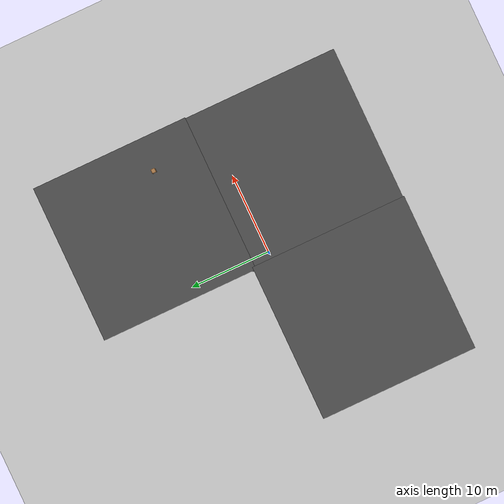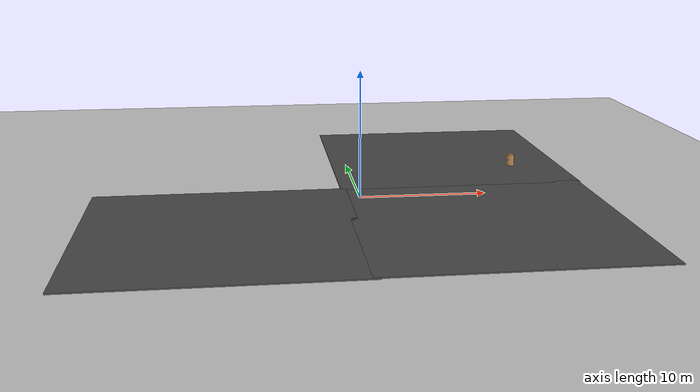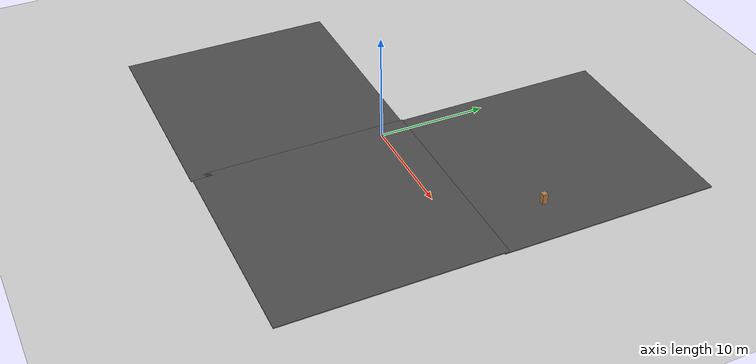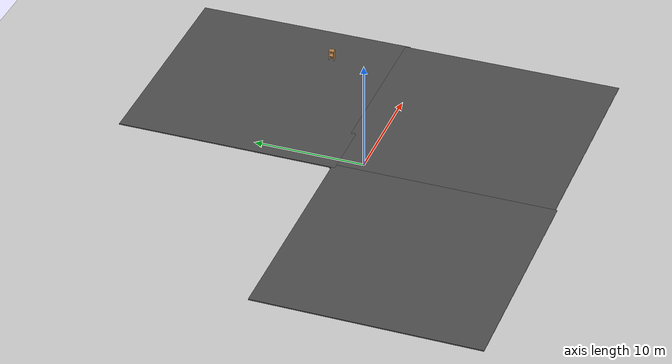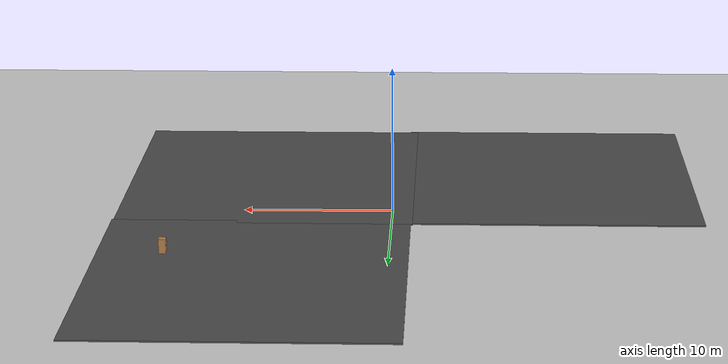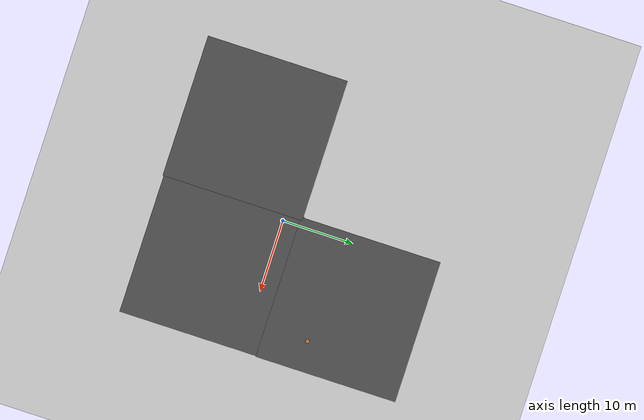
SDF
<sdf version="1.7">
 <world name="default">
  <model name="ground_plane">
   <static>1</static>
   <link name="link">
    <collision name="collision">
     <geometry><plane><normal>0 0 1</normal><size>100 100</size></plane></geometry>
     <surface><friction><ode><mu>100</mu><mu2>50</mu2></ode></friction></surface>
    </collision>
    <visual name="visual">
     <cast_shadows>0</cast_shadows>
     <geometry><plane><normal>0 0 1</normal><size>100 100</size></plane></geometry>
     <material>
      <script><uri>file://media/materials/scripts/gazebo.material</uri><name>Gazebo/Grey</name></script>
     </material>
    </visual>
   </link>
  </model>
  <model name="asphalt_plane">
   <static>1</static>
   <link name="link">
    <collision name="collision">
     <geometry><box><size>20 20 0.1</size></box></geometry>
     <surface><friction><ode><mu>100</mu><mu2>50</mu2></ode></friction></surface>
    </collision>
    <visual name="visual">
     <cast_shadows>0</cast_shadows>
     <geometry><box><size>20 20 0.1</size></box></geometry>
     <material>
      <script>
       <uri>model://asphalt_plane/materials/scripts</uri>
       <uri>model://asphalt_plane/materials/textures</uri>
       <name>vrc/asphalt</name>
      </script>
     </material>
    </visual>
   </link>
   <pose>-10.8531 -7.50842 0 0 -0 0</pose>
  </model>
  <model name="asphalt_plane_clone_clone">
   <static>1</static>
   <link name="link">
    <collision name="collision">
     <geometry><box><size>20 20 0.1</size></box></geometry>
     <surface><friction><ode><mu>100</mu><mu2>50</mu2></ode></friction></surface>
    </collision>
    <visual name="visual">
     <cast_shadows>0</cast_shadows>
     <geometry><box><size>20 20 0.1</size></box></geometry>
     <material>
      <script>
       <uri>model://asphalt_plane/materials/scripts</uri>
       <uri>model://asphalt_plane/materials/textures</uri>
       <name>vrc/asphalt</name>
      </script>
     </material>
    </visual>
   </link>
   <pose>8.71597 12.1785 0 0 -0 0</pose>
  </model>
  <model name="asphalt_plane_clone_clone_0">
   <static>1</static>
   <link name="link">
    <collision name="collision">
     <geometry><box><size>20 20 0.1</size></box></geometry>
     <surface><friction><ode><mu>100</mu><mu2>50</mu2></ode></friction></surface>
    </collision>
    <visual name="visual">
     <cast_shadows>0</cast_shadows>
     <geometry><box><size>20 20 0.1</size></box></geometry>
     <material>
      <script>
       <uri>model://asphalt_plane/materials/scripts</uri>
       <uri>model://asphalt_plane/materials/textures</uri>
       <name>vrc/asphalt</name>
      </script>
     </material>
    </visual>
   </link>
   <pose>8.60996 -7.34898 0 0 -0 0</pose>
  </model>
  <model name="cabinet">
   <static>1</static>
   <link name="cabinet_bottom_plate">
    <inertial>
     <pose>0 0 -1 0 -0 0</pose>
     <inertia><ixx>2.05</ixx><ixy>0</ixy><ixz>0</ixz><iyy>2.05</iyy><iyz>0</iyz><izz>2.05</izz></inertia>
     <mass>25</mass>
    </inertial>
    <collision name="cabinet_bottom_plate_geom">
     <pose>0 0 0.01 0 -0 0</pose>
     <geometry><box><size>0.45 0.45 0.02</size></box></geometry>
    </collision>
    <visual name="cabinet_bottom_plate_geom_visual">
     <pose>0 0 0.01 0 -0 0</pose>
     <geometry><box><size>0.45 0.45 0.02</size></box></geometry>
     <material>
      <script><uri>file://media/materials/scripts/gazebo.material</uri><name>Gazebo/Wood</name></script>
     </material>
    </visual>
    <collision name="cabinet_bottom_plate_geom_cabinet_back_plate">
     <pose>0.235 0 0.51 0 -0 0</pose>
     <geometry><box><size>0.02 0.45 1.02</size></box></geometry>
    </collision>
    <visual name="cabinet_bottom_plate_geom_cabinet_back_plate_visual">
     <pose>0.235 0 0.51 0 -0 0</pose>
     <geometry><box><size>0.02 0.45 1.02</size></box></geometry>
     <material>
      <script><uri>file://media/materials/scripts/gazebo.material</uri><name>Gazebo/Wood</name></script>
     </material>
    </visual>
    <collision name="cabinet_bottom_plate_geom_cabinet_left_plate">
     <pose>0 0.235 0.51 0 -0 0</pose>
     <geometry><box><size>0.45 0.02 1.02</size></box></geometry>
    </collision>
    <visual name="cabinet_bottom_plate_geom_cabinet_left_plate_visual">
     <pose>0 0.235 0.51 0 -0 0</pose>
     <geometry><box><size>0.45 0.02 1.02</size></box></geometry>
     <material>
      <script><uri>file://media/materials/scripts/gazebo.material</uri><name>Gazebo/Wood</name></script>
     </material>
    </visual>
    <collision name="cabinet_bottom_plate_geom_cabinet_middle_plate">
     <pose>0 0 0.51 0 -0 0</pose>
     <geometry><box><size>0.45 0.45 0.02</size></box></geometry>
    </collision>
    <visual name="cabinet_bottom_plate_geom_cabinet_middle_plate_visual">
     <pose>0 0 0.51 0 -0 0</pose>
     <geometry><box><size>0.45 0.45 0.02</size></box></geometry>
     <material>
      <script><uri>file://media/materials/scripts/gazebo.material</uri><name>Gazebo/Wood</name></script>
     </material>
    </visual>
    <collision name="cabinet_bottom_plate_geom_cabinet_right_plate">
     <pose>0 -0.235 0.51 0 -0 0</pose>
     <geometry><box><size>0.45 0.02 1.02</size></box></geometry>
    </collision>
    <visual name="cabinet_bottom_plate_geom_cabinet_right_plate_visual">
     <pose>0 -0.235 0.51 0 -0 0</pose>
     <geometry><box><size>0.45 0.02 1.02</size></box></geometry>
     <material>
      <script><uri>file://media/materials/scripts/gazebo.material</uri><name>Gazebo/Wood</name></script>
     </material>
    </visual>
    <collision name="cabinet_bottom_plate_geom_cabinet_top_plate">
     <pose>0 0 1.01 0 -0 0</pose>
     <geometry><box><size>0.45 0.45 0.02</size></box></geometry>
    </collision>
    <visual name="cabinet_bottom_plate_geom_cabinet_top_plate_visual">
     <pose>0 0 1.01 0 -0 0</pose>
     <geometry><box><size>0.45 0.45 0.02</size></box></geometry>
     <material>
      <script><uri>file://media/materials/scripts/gazebo.material</uri><name>Gazebo/Wood</name></script>
     </material>
    </visual>
   </link>
   <pose>14.4428 8.20091 0 0 -0 0</pose>
  </model>
 </world>
</sdf>
